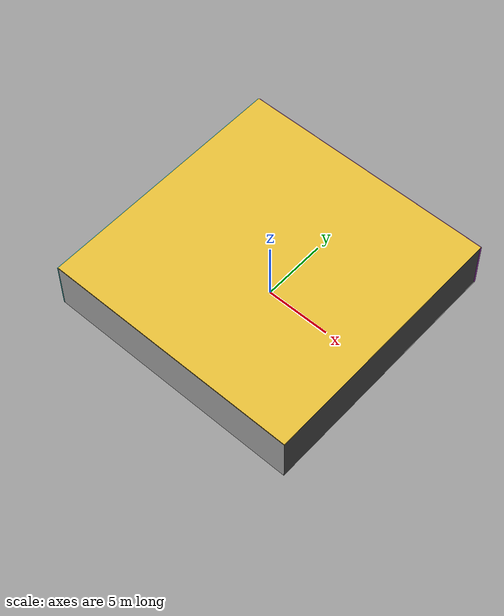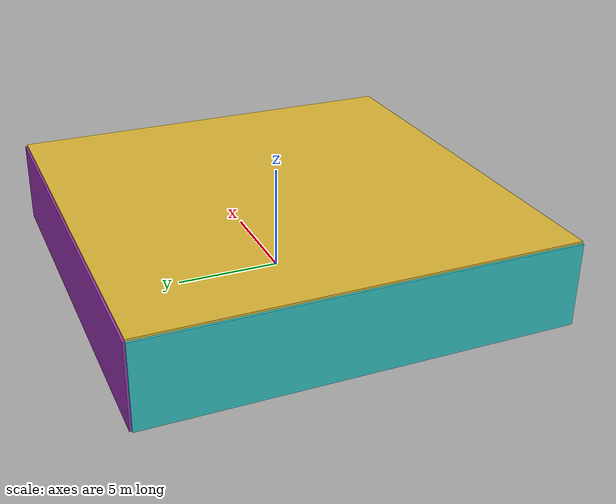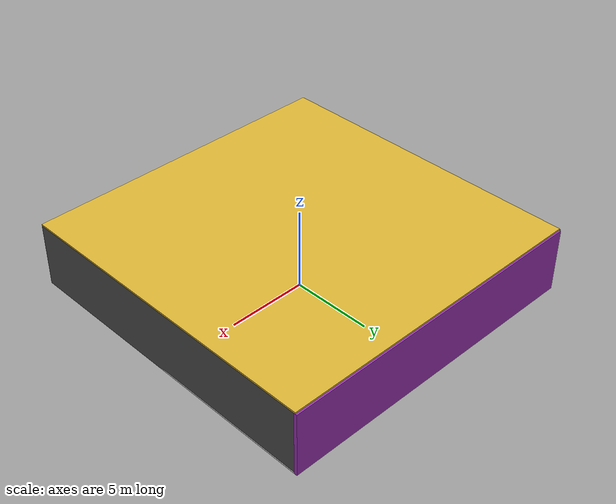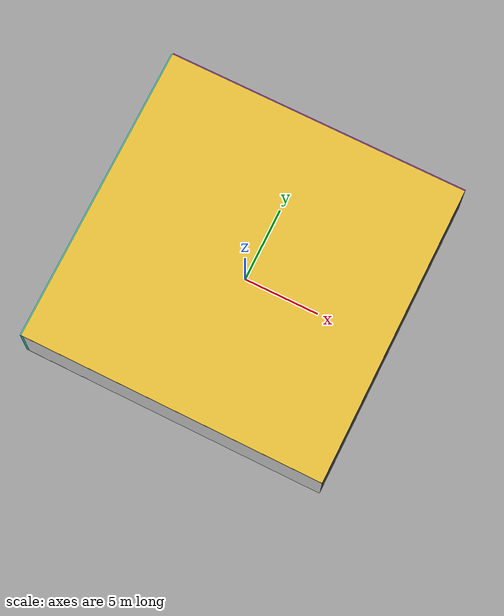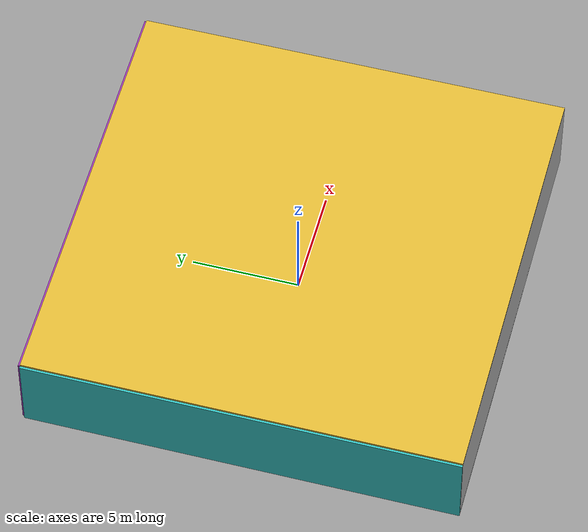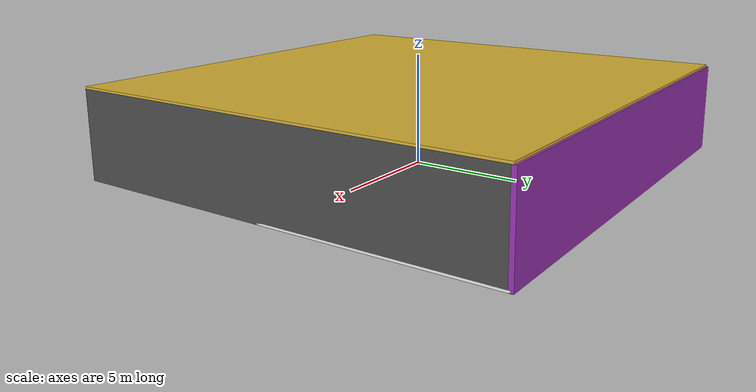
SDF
<sdf version="1.4">
 <world name="default">
  <physics type="ode">
   <max_step_size>0.001</max_step_size>
   <real_time_factor>1</real_time_factor>
   <real_time_update_rate>1000</real_time_update_rate>
   <gravity>0 0 -9.8</gravity>
  </physics>
  <scene><ambient>0.4 0.4 0.4 1</ambient><background>0.7 0.7 0.7 1</background><shadows>1</shadows></scene>
  <model name="Surrounding">
   <static>1</static>
   <link name="Ceiling">
    <collision name="Ceiling_Collision"><geometry><box><size>20 20 0.1</size></box></geometry></collision>
    <visual name="Ceiling_Visual">
     <geometry><box><size>20 20 0.1</size></box></geometry>
     <material>
      <script><uri>file://media/materials/scripts/gazebo.material</uri><name>Gazebo/Gold</name></script>
     </material>
    </visual>
    <pose>0 0 4.05 0 0 0</pose>
   </link>
   <link name="Wall_South">
    <collision name="Wall_South_Collision">
     <geometry><box><size>20 0 4</size></box></geometry>
     <pose>0 0 2 0 -0 0</pose>
    </collision>
    <visual name="Wall_South_Visual">
     <pose>0 0 2 0 -0 0</pose>
     <geometry><box><size>20 0 4</size></box></geometry>
     <material>
      <script><uri>file://media/materials/scripts/gazebo.material</uri><name>Gazebo/White</name></script>
     </material>
    </visual>
    <velocity_decay><linear>0</linear><angular>0</angular></velocity_decay>
    <pose>0 -10 0 0 -0 0</pose>
   </link>
   <link name="Wall_East">
    <collision name="Wall_21_Collision">
     <geometry><box><size>20 0 4</size></box></geometry>
     <pose>0 0 2 0 -0 0</pose>
    </collision>
    <visual name="Wall_21_Visual">
     <pose>0 0 2 0 -0 0</pose>
     <geometry><box><size>20 0 4</size></box></geometry>
     <material>
      <script><uri>file://media/materials/scripts/gazebo.material</uri><name>Gazebo/DarkGrey</name></script>
     </material>
    </visual>
    <velocity_decay><linear>0</linear><angular>0</angular></velocity_decay>
    <pose>10 0 0 0 -0 1.5708</pose>
   </link>
   <link name="Wall_North">
    <collision name="Wall_22_Collision">
     <geometry><box><size>20 0.2 4</size></box></geometry>
     <pose>0 0 2 0 -0 0</pose>
    </collision>
    <visual name="Wall_22_Visual">
     <pose>0 0 2 0 -0 0</pose>
     <geometry><box><size>20 0.2 4</size></box></geometry>
     <material>
      <script><uri>file://media/materials/scripts/gazebo.material</uri><name>Gazebo/PurpleGlow</name></script>
     </material>
    </visual>
    <velocity_decay><linear>0</linear><angular>0</angular></velocity_decay>
    <pose>0 10 0 0 -0 0</pose>
   </link>
   <link name="Wall_West">
    <collision name="Wall_23_Collision">
     <geometry><box><size>20 0.2 4</size></box></geometry>
     <pose>0 0 2 0 -0 0</pose>
    </collision>
    <visual name="Wall_23_Visual">
     <pose>0 0 2 0 -0 0</pose>
     <geometry><box><size>20 0.2 4</size></box></geometry>
     <material>
      <script>
       <uri>file://media/materials/scripts/gazebo.material</uri>
       <name>Gazebo/TurquoiseGlowOutline</name>
      </script>
     </material>
    </visual>
    <velocity_decay><linear>0</linear><angular>0</angular></velocity_decay>
    <pose>-10 0 0 0 0 -1.5708</pose>
   </link>
   <link name="Ground_link">
    <collision name="collision">
     <pose>0 0 .05 0 -0 0</pose>
     <geometry><box><size>20 20 0.1</size></box></geometry>
    </collision>
    <visual name="visual">
     <pose>0 0 .05 0 -0 0</pose>
     <geometry><box><size>20 20 0.1</size></box></geometry>
     <material>
      <script><uri>file://media/materials/scripts/gazebo.material</uri><name>Gazebo/White</name></script>
     </material>
    </visual>
   </link>
   <static>1</static>
  </model>
  <spherical_coordinates>
   <surface_model>EARTH_WGS84</surface_model>
   <latitude_deg>0</latitude_deg>
   <longitude_deg>0</longitude_deg>
   <elevation>0</elevation>
   <heading_deg>0</heading_deg>
  </spherical_coordinates>
  <light name="lightball_0" type="diffuse">
   <diffuse>0.8 0.8 0.8 1</diffuse>
   <specular>0.2 0.2 0.2 1</specular>
   <attenuation>
    <range>100</range>
    <constant>0.7</constant>
    <linear>0.01</linear>
    <quadratic>0.001</quadratic>
   </attenuation>
   <direction>-0.5 0.1 -0.9</direction>
   <pose>4.90494593268 -4.22810281506 3.80069736577 0 0 0</pose>
  </light>
  <light name="lightball_1" type="diffuse">
   <diffuse>0.8 0.8 0.8 1</diffuse>
   <specular>0.2 0.2 0.2 1</specular>
   <attenuation>
    <range>100</range>
    <constant>0.7</constant>
    <linear>0.01</linear>
    <quadratic>0.001</quadratic>
   </attenuation>
   <direction>-0.5 0.1 -0.9</direction>
   <pose>2.63079142974 7.61901957776 1.46445127037 0 0 0</pose>
  </light>
  <light name="lightball_2" type="diffuse">
   <diffuse>0.8 0.8 0.8 1</diffuse>
   <specular>0.2 0.2 0.2 1</specular>
   <attenuation>
    <range>100</range>
    <constant>0.7</constant>
    <linear>0.01</linear>
    <quadratic>0.001</quadratic>
   </attenuation>
   <direction>-0.5 0.1 -0.9</direction>
   <pose>9.23741107439 6.95620439589 1.77401310396 0 0 0</pose>
  </light>
  <include>
   <uri>model://textured_shapes</uri>
   <pose>-6.64845137086 -4.3608907069 0 0 0 2.80886482294</pose>
  </include>
  <include>
   <uri>model://robocup_3Dsim_goal</uri>
   <pose>-8.1712613125 4.58737233583 0 0 0 1.33153673826</pose>
  </include>
  <include>
   <uri>model://construction_cone</uri>
   <pose>-5.27924011996 -7.84073868643 0 0 0 2.58227080558</pose>
  </include>
  <include><uri>model://table</uri><pose>-2.44438251829 -1.52744154644 0 0 0 0.913780118445</pose></include>
  <include>
   <uri>model://construction_cone</uri>
   <pose>-1.21936069139 7.2404385602 0 0 0 2.85020958658</pose>
  </include>
  <include><uri>model://cabinet</uri><pose>6.95088869133 -4.23615765019 0 0 0 2.14838832911</pose></include>
 </world>
</sdf>

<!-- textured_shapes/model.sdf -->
<sdf version="1.6">
  <model name="textured_shapes">
    <pose>0 0 0.5 0 0 0</pose>
    <link name="box">
      <pose>0 -1.5 0 0 0 0</pose>
      <collision name="collision">
        <geometry>
          <box>
            <size>1 1 1</size>
          </box>
        </geometry>
      </collision>
      <visual name="visual">
        <geometry>
          <box>
            <size>1 1 1</size>
          </box>
        </geometry>
        <material>
          <script>
            <uri>model://../model_source/models/textured_shapes/materials/scripts</uri>
            <uri>model://../model_source/models/textured_shapes/materials/textures</uri>
            <name>TexturedShape/Squares</name>
          </script>
        </material>
      </visual>
    </link>
    <link name="sphere">
      <collision name="collision">
        <geometry>
          <sphere>
            <radius>0.5</radius>
          </sphere>
        </geometry>
      </collision>
      <visual name="visual">
        <geometry>
          <sphere>
            <radius>0.5</radius>
          </sphere>
        </geometry>
        <material>
          <script>
            <uri>model://../model_source/models/textured_shapes/materials/scripts</uri>
            <uri>model://../model_source/models/textured_shapes/materials/textures</uri>
            <name>TexturedShape/Squares</name>
          </script>
        </material>
      </visual>
    </link>
    <link name="cylinder">
      <pose>0 1.5 0 0 0 0</pose>
      <collision name="collision">
        <geometry>
          <cylinder>
            <radius>0.5</radius>
            <length>1</length>
          </cylinder>
        </geometry>
      </collision>
      <visual name="visual">
        <geometry>
          <cylinder>
            <radius>0.5</radius>
            <length>1</length>
          </cylinder>
        </geometry>
        <material>
          <script>
            <uri>model://../model_source/models/textured_shapes/materials/scripts</uri>
            <uri>model://../model_source/models/textured_shapes/materials/textures</uri>
            <name>TexturedShape/Squares</name>
          </script>
        </material>
      </visual>
    </link>
  </model>
</sdf>

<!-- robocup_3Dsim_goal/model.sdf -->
<sdf version="1.5">
  <model name="robocup_3d_goal">
    <static>true</static>
    <link name="left_post">
      <pose>0 1.05 0.45 0 0 0</pose>
      <collision name="collision">
        <geometry>
          <cylinder>
            <radius>0.05</radius>
            <length>0.9</length>
          </cylinder>
        </geometry>
      </collision>
      <visual name="visual">
        <geometry>
          <cylinder>
            <radius>0.05</radius>
            <length>0.9</length>
          </cylinder>
        </geometry>
        <material>
          <script>
            <uri>file://media/materials/scripts/gazebo.material</uri>
            <name>Gazebo/ZincYellow</name>
          </script>
        </material>
      </visual>
    </link>
    <link name="left_support_horiz_lower">
      <pose>0.30 1.05 0.01 0 0 0</pose>
      <collision name="collision">
        <geometry>
          <box>
            <size>0.50 0.02 0.02</size>
          </box>
        </geometry>
      </collision>
      <visual name="visual">
        <geometry>
          <box>
            <size>0.50 0.02 0.02</size>
          </box>
        </geometry>
        <material>
          <script>
            <uri>file://media/materials/scripts/gazebo.material</uri>
            <name>Gazebo/White</name>
          </script>
        </material>
      </visual>
    </link>
    <link name="left_support_horiz_upper">
      <pose>0.30 1.05 0.79 0 0 0</pose>
      <collision name="collision">
        <geometry>
          <box>
            <size>0.50 0.02 0.02</size>
          </box>
        </geometry>
      </collision>
      <visual name="visual">
        <geometry>
          <box>
            <size>0.50 0.02 0.02</size>
          </box>
        </geometry>
        <material>
          <script>
            <uri>file://media/materials/scripts/gazebo.material</uri>
            <name>Gazebo/White</name>
          </script>
        </material>
      </visual>
    </link>
    <link name="left_support_vertical">
      <pose>0.56 1.05 0.4 0 1.5708 0</pose>
      <collision name="collision">
        <geometry>
          <box>
            <size>0.80 0.02 0.02</size>
          </box>
        </geometry>
      </collision>
      <visual name="visual">
        <geometry>
          <box>
            <size>0.80 0.02 0.02</size>
          </box>
        </geometry>
        <material>
          <script>
            <uri>file://media/materials/scripts/gazebo.material</uri>
            <name>Gazebo/White</name>
          </script>
        </material>
      </visual>
    </link>
    <link name="right_support_horiz_lower">
      <pose>0.30 -1.05 0.01 0 0 0</pose>
      <collision name="collision">
        <geometry>
          <box>
            <size>0.50 0.02 0.02</size>
          </box>
        </geometry>
      </collision>
      <visual name="visual">
        <geometry>
          <box>
            <size>0.50 0.02 0.02</size>
          </box>
        </geometry>
        <material>
          <script>
            <uri>file://media/materials/scripts/gazebo.material</uri>
            <name>Gazebo/White</name>
          </script>
        </material>
      </visual>
    </link>
    <link name="right_support_horiz_upper">
      <pose>0.30 -1.05 0.79 0 0 0</pose>
      <collision name="collision">
        <geometry>
          <box>
            <size>0.50 0.02 0.02</size>
          </box>
        </geometry>
      </collision>
      <visual name="visual">
        <geometry>
          <box>
            <size>0.50 0.02 0.02</size>
          </box>
        </geometry>
        <material>
          <script>
            <uri>file://media/materials/scripts/gazebo.material</uri>
            <name>Gazebo/White</name>
          </script>
        </material>
      </visual>
    </link>
    <link name="right_support_vertical">
      <pose>0.56 -1.05 0.4 0 1.5708 0</pose>
      <collision name="collision">
        <geometry>
          <box>
            <size>0.80 0.02 0.02</size>
          </box>
        </geometry>
      </collision>
      <visual name="visual">
        <geometry>
          <box>
            <size>0.80 0.02 0.02</size>
          </box>
        </geometry>
        <material>
          <script>
            <uri>file://media/materials/scripts/gazebo.material</uri>
            <name>Gazebo/White</name>
          </script>
        </material>
      </visual>
    </link>
    <link name="center_support_horiz_lower">
      <pose>0.56 0 0.01 0 1.5708 0</pose>
      <collision name="collision">
        <geometry>
          <box>
            <size>0.02 2.08 0.02</size>
          </box>
        </geometry>
      </collision>
      <visual name="visual">
        <geometry>
          <box>
            <size>0.02 2.08 0.02</size>
          </box>
        </geometry>
        <material>
          <script>
            <uri>file://media/materials/scripts/gazebo.material</uri>
            <name>Gazebo/White</name>
          </script>
        </material>
      </visual>
    </link>
    <link name="center_support_horiz_upper">
      <pose>0.56 0 0.79 0 1.5708 0</pose>
      <collision name="collision">
        <geometry>
          <box>
            <size>0.02 2.08 0.02</size>
          </box>
        </geometry>
      </collision>
      <visual name="visual">
        <geometry>
          <box>
            <size>0.02 2.08 0.02</size>
          </box>
        </geometry>
        <material>
          <script>
            <uri>file://media/materials/scripts/gazebo.material</uri>
            <name>Gazebo/White</name>
          </script>
        </material>
      </visual>
    </link>
    <link name="right_post">
      <pose>0 -1.05 0.45 0 0 0</pose>
      <collision name="collision">
        <geometry>
          <cylinder>
            <radius>0.05</radius>
            <length>0.9</length>
          </cylinder>
        </geometry>
      </collision>
      <visual name="visual">
        <geometry>
          <cylinder>
            <radius>0.05</radius>
            <length>0.9</length>
          </cylinder>
        </geometry>
        <material>
          <script>
            <uri>file://media/materials/scripts/gazebo.material</uri>
            <name>Gazebo/ZincYellow</name>
          </script>
        </material>
      </visual>
    </link>
    <link name="crossbar">
      <pose>0 0 0.85 1.57 1.57 0</pose>
      <collision name="collision">
        <geometry>
          <cylinder>
            <radius>0.05</radius>
            <length>2.0</length>
          </cylinder>
        </geometry>
      </collision>
      <visual name="visual">
        <geometry>
          <cylinder>
            <radius>0.05</radius>
            <length>2.0</length>
          </cylinder>
        </geometry>
        <material>
          <script>
            <uri>file://media/materials/scripts/gazebo.material</uri>
            <name>Gazebo/ZincYellow</name>
          </script>
        </material>
      </visual>
    </link>
    <link name="center_net">
      <pose>0.56 0 0.40 0 0 0</pose>
      <collision name="collision">
        <geometry>
          <box>
            <size>0.01 2.1 0.80</size>
          </box>
        </geometry>
      </collision>
      <visual name="visual">
        <geometry>
          <box>
            <size>0.01 2.1 0.80</size>
          </box>
        </geometry>
        <material>
          <script>
            <uri>model://../model_source/models/robocup09_spl_field/materials/scripts/</uri>
            <uri>model://../model_source/models/robocup09_spl_field/materials/textures/</uri>
            <name>RoboCup/Net</name>
          </script>
        </material>
      </visual>
    </link>
    <link name="left_net">
      <pose>0.30 1.05 0.40 0 0 0</pose>
      <collision name="collision">
        <geometry>
          <box>
            <size>0.50 0.01 0.76</size>
          </box>
        </geometry>
      </collision>
      <visual name="visual">
        <geometry>
          <box>
            <size>0.50 0.01 0.76</size>
          </box>
        </geometry>
        <material>
          <script>
            <uri>model://../model_source/models/robocup09_spl_field/materials/scripts/</uri>
            <uri>model://../model_source/models/robocup09_spl_field/materials/textures/</uri>
            <name>RoboCup/Net</name>
          </script>
        </material>
      </visual>
    </link>
    <link name="right_net">
      <pose>0.30 -1.05 0.40 0 0 0</pose>
      <collision name="collision">
        <geometry>
          <box>
            <size>0.50 0.01 0.76</size>
          </box>
        </geometry>
      </collision>
      <visual name="visual">
        <geometry>
          <box>
            <size>0.50 0.01 0.76</size>
          </box>
        </geometry>
        <material>
          <script>
            <uri>model://../model_source/models/robocup09_spl_field/materials/scripts/</uri>
            <uri>model://../model_source/models/robocup09_spl_field/materials/textures/</uri>
            <name>RoboCup/Net</name>
          </script>
        </material>
      </visual>
    </link>
  </model>
</sdf>

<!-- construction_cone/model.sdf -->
<sdf version="1.5">
  <model name="Construction Cone">
    <link name="link">
      <collision name="collision">
        <geometry>
          <mesh>
            <scale>10 10 10</scale>
            <uri>file://isr-testbed/construction_cone/meshes/construction_cone.dae</uri>
          </mesh>
        </geometry>
      </collision>
      <visual name="visual">
        <geometry>
          <mesh>
            <scale>10 10 10</scale>
            <uri>file://isr-testbed/construction_cone/meshes/construction_cone.dae</uri>
          </mesh>
        </geometry>
      </visual>
    </link>
  </model>
</sdf>

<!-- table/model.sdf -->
<sdf version="1.5">
  <model name="table">
    <static>true</static>
    <link name="link">
      <collision name="surface">
        <pose>0 0 1.0 0 0 0</pose>
        <geometry>
          <box>
            <size>1.5 0.8 0.03</size>
          </box>
        </geometry>
        <surface>
          <friction>
            <ode>
              <mu>0.6</mu>
              <mu2>0.6</mu2>
            </ode>
          </friction>
        </surface>
      </collision>
      <visual name="visual1">
        <pose>0 0 1.0 0 0 0</pose>
        <geometry>
          <box>
            <size>1.5 0.8 0.03</size>
          </box>
        </geometry>
        <material>
          <script>
            <uri>model://media/materials/scripts/gazebo.material</uri>
            <name>Gazebo/Wood</name>
          </script>
        </material>
      </visual>
      <collision name="front_left_leg">
        <pose>0.68 0.38 0.5 0 0 0</pose>
        <geometry>
          <cylinder>
            <radius>0.02</radius>
            <length>1.0</length>
          </cylinder>
        </geometry>
      </collision>
      <visual name="front_left_leg">
        <pose>0.68 0.38 0.5 0 0 0</pose>
        <geometry>
          <cylinder>
            <radius>0.02</radius>
            <length>1.0</length>
          </cylinder>
        </geometry>
        <material>
          <script>
            <uri>model://media/materials/scripts/gazebo.material</uri>
            <name>Gazebo/Grey</name>
          </script>
        </material>
      </visual>
      <collision name="front_right_leg">
        <pose>0.68 -0.38 0.5 0 0 0</pose>
        <geometry>
          <cylinder>
            <radius>0.02</radius>
            <length>1.0</length>
          </cylinder>
        </geometry>
      </collision>
      <visual name="front_right_leg">
        <pose>0.68 -0.38 0.5 0 0 0</pose>
        <geometry>
          <cylinder>
            <radius>0.02</radius>
            <length>1.0</length>
          </cylinder>
        </geometry>
        <material>
          <script>
            <uri>model://media/materials/scripts/gazebo.material</uri>
            <name>Gazebo/Grey</name>
          </script>
        </material>
      </visual>
      <collision name="back_right_leg">
        <pose>-0.68 -0.38 0.5 0 0 0</pose>
        <geometry>
          <cylinder>
            <radius>0.02</radius>
            <length>1.0</length>
          </cylinder>
        </geometry>
      </collision>
      <visual name="back_right_leg">
        <pose>-0.68 -0.38 0.5 0 0 0</pose>
        <geometry>
          <cylinder>
            <radius>0.02</radius>
            <length>1.0</length>
          </cylinder>
        </geometry>
        <material>
          <script>
            <uri>model://media/materials/scripts/gazebo.material</uri>
            <name>Gazebo/Grey</name>
          </script>
        </material>
      </visual>
      <collision name="back_left_leg">
        <pose>-0.68 0.38 0.5 0 0 0</pose>
        <geometry>
          <cylinder>
            <radius>0.02</radius>
            <length>1.0</length>
          </cylinder>
        </geometry>
      </collision>
      <visual name="back_left_leg">
        <pose>-0.68 0.38 0.5 0 0 0</pose>
        <geometry>
          <cylinder>
            <radius>0.02</radius>
            <length>1.0</length>
          </cylinder>
        </geometry>
        <material>
          <script>
            <uri>model://media/materials/scripts/gazebo.material</uri>
            <name>Gazebo/Grey</name>
          </script>
        </material>
      </visual>
    </link>
  </model>
</sdf>

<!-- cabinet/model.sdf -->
<sdf version="1.5">
  <model name="cabinet">
    <static>true</static>
    <link name="cabinet_bottom_plate">
      <inertial>
        <pose>0 0 -1 0 0 0</pose>
        <inertia>
          <ixx>2.050000</ixx>
          <ixy>0</ixy>
          <ixz>0</ixz>
          <iyy>2.050000</iyy>
          <iyz>0</iyz>
          <izz>2.050000</izz>
        </inertia>
        <mass>25.000000</mass>
      </inertial>
      <collision name="cabinet_bottom_plate_geom">
        <pose>0 0 0.010000 0 0 0</pose>
        <geometry>
          <box>
            <size>0.450000 0.450000 0.020000</size>
          </box>
        </geometry>
      </collision>
      <visual name="cabinet_bottom_plate_geom_visual">
        <pose>0 0 0.010000 0 0 0</pose>
        <geometry>
          <box>
            <size>0.450000 0.450000 0.020000</size>
          </box>
        </geometry>
        <material>
          <script>
            <uri>model://media/materials/scripts/gazebo.material</uri>
            <name>Gazebo/Wood</name>
          </script>
        </material>
      </visual>
      <collision name="cabinet_bottom_plate_geom_cabinet_back_plate">
        <pose>0.235000 0 0.510000 0 0 0</pose>
        <geometry>
          <box>
            <size>0.020000 0.450000 1.020000</size>
          </box>
        </geometry>
      </collision>
      <visual name="cabinet_bottom_plate_geom_cabinet_back_plate_visual">
        <pose>0.235000 0 0.510000 0 0 0</pose>
        <geometry>
          <box>
            <size>0.020000 0.450000 1.020000</size>
          </box>
        </geometry>
        <material>
          <script>
            <uri>model://media/materials/scripts/gazebo.material</uri>
            <name>Gazebo/Wood</name>
          </script>
        </material>
      </visual>
      <collision name="cabinet_bottom_plate_geom_cabinet_left_plate">
        <pose>0 0.235000 0.510000 0 0 0</pose>
        <geometry>
          <box>
            <size>0.450000 0.020000 1.020000</size>
          </box>
        </geometry>
      </collision>
      <visual name="cabinet_bottom_plate_geom_cabinet_left_plate_visual">
        <pose>0 0.235000 0.510000 0 0 0</pose>
        <geometry>
          <box>
            <size>0.450000 0.020000 1.020000</size>
          </box>
        </geometry>
        <material>
          <script>
            <uri>model://media/materials/scripts/gazebo.material</uri>
            <name>Gazebo/Wood</name>
          </script>
        </material>
      </visual>
      <collision name="cabinet_bottom_plate_geom_cabinet_middle_plate">
        <pose>0 0 0.510000 0 0 0</pose>
        <geometry>
          <box>
            <size>0.450000 0.450000 0.020000</size>
          </box>
        </geometry>
      </collision>
      <visual name="cabinet_bottom_plate_geom_cabinet_middle_plate_visual">
        <pose>0 0 0.510000 0 0 0</pose>
        <geometry>
          <box>
            <size>0.450000 0.450000 0.020000</size>
          </box>
        </geometry>
        <material>
          <script>
            <uri>model://media/materials/scripts/gazebo.material</uri>
            <name>Gazebo/Wood</name>
          </script>
        </material>
      </visual>
      <collision name="cabinet_bottom_plate_geom_cabinet_right_plate">
        <pose>0 -0.235000 0.510000 0 0 0</pose>
        <geometry>
          <box>
            <size>0.450000 0.020000 1.020000</size>
          </box>
        </geometry>
      </collision>
      <visual name="cabinet_bottom_plate_geom_cabinet_right_plate_visual">
        <pose>0 -0.235000 0.510000 0 0 0</pose>
        <geometry>
          <box>
            <size>0.450000 0.020000 1.020000</size>
          </box>
        </geometry>
        <material>
          <script>
            <uri>model://media/materials/scripts/gazebo.material</uri>
            <name>Gazebo/Wood</name>
          </script>
        </material>
      </visual>
      <collision name="cabinet_bottom_plate_geom_cabinet_top_plate">
        <pose>0 0 1.010000 0 0 0</pose>
        <geometry>
          <box>
            <size>0.450000 0.450000 0.020000</size>
          </box>
        </geometry>
      </collision>
      <visual name="cabinet_bottom_plate_geom_cabinet_top_plate_visual">
        <pose>0 0 1.010000 0 0 0</pose>
        <geometry>
          <box>
            <size>0.450000 0.450000 0.020000</size>
          </box>
        </geometry>
        <material>
          <script>
            <uri>model://media/materials/scripts/gazebo.material</uri>
            <name>Gazebo/Wood</name>
          </script>
        </material>
      </visual>
    </link>
  </model>
</sdf>
